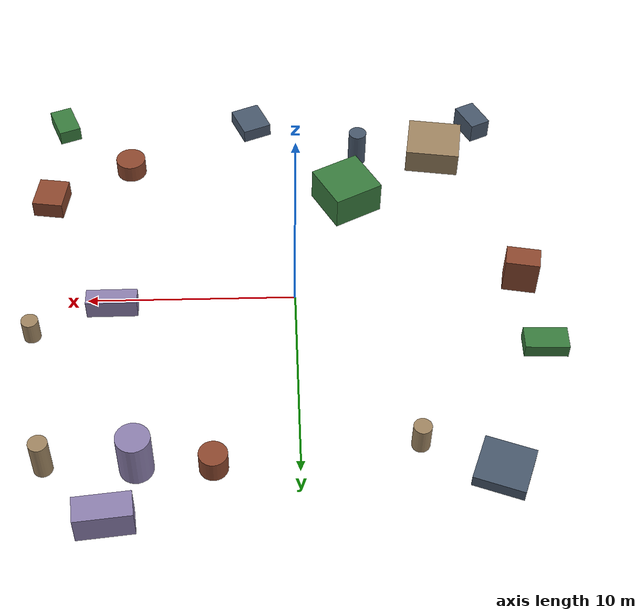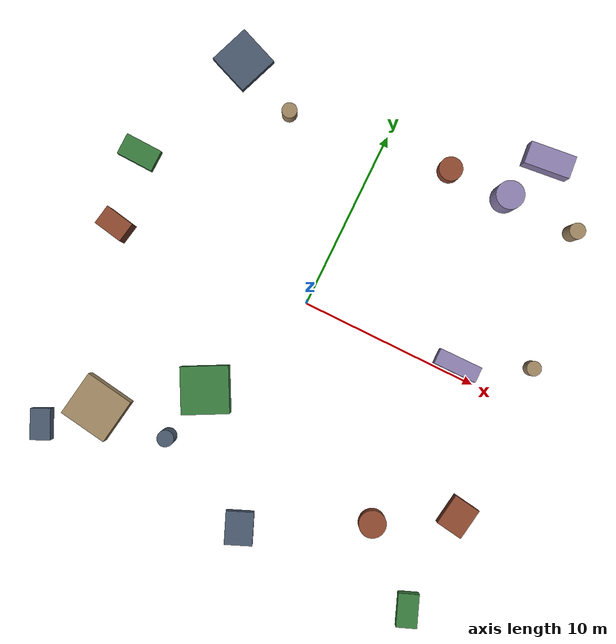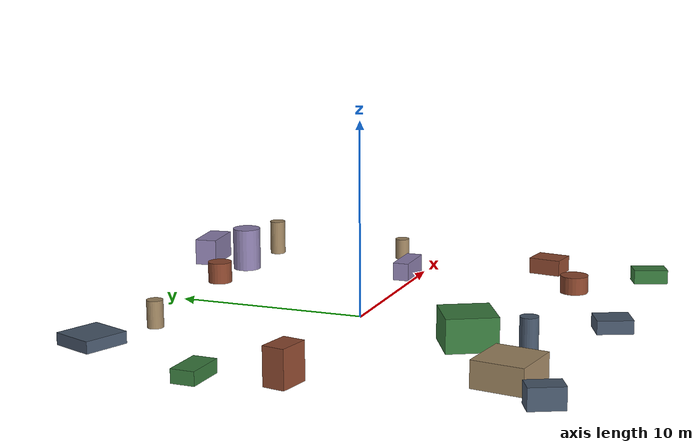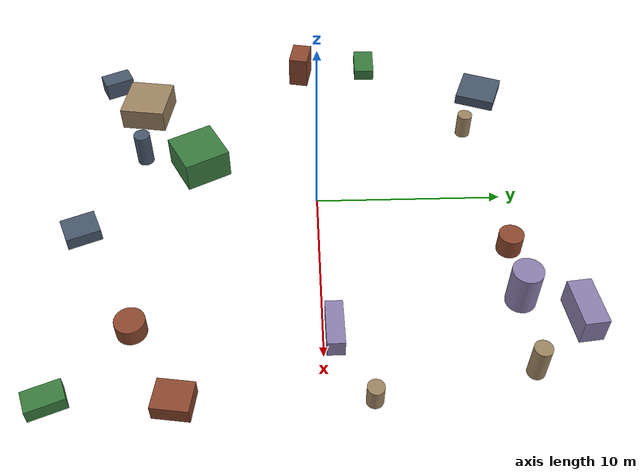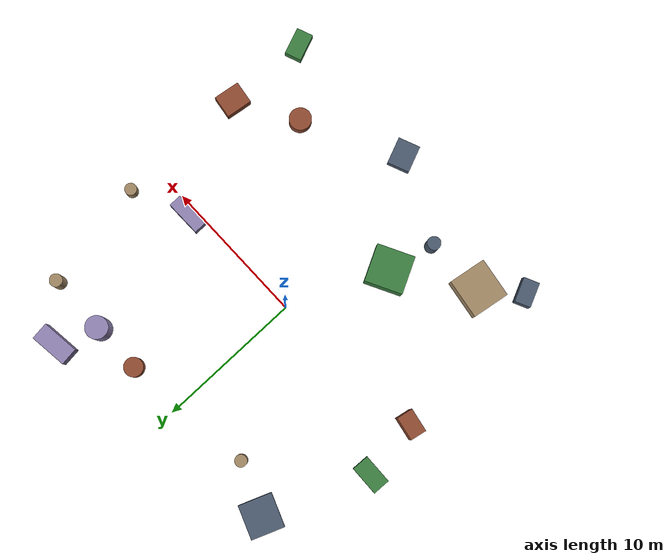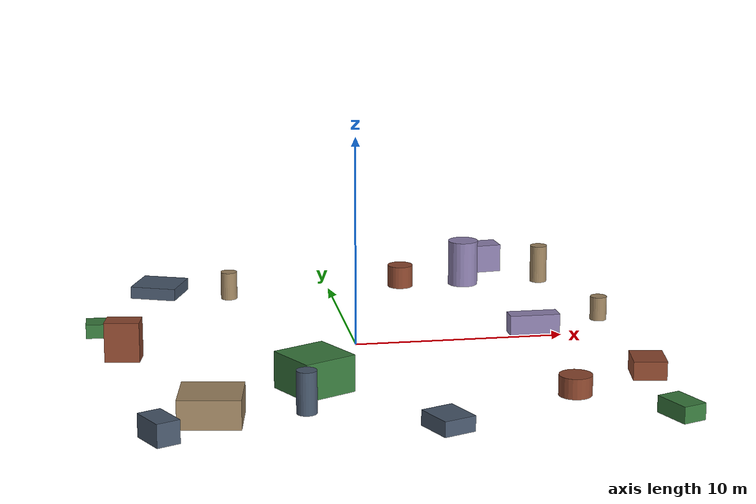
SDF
<sdf version="1.10">
 <world name="robotx_task1_uav_view">
  <gravity>0 0 -9.81</gravity>
  <physics name="physics" type="ode">
   <max_step_size>0.002</max_step_size>
   <real_time_factor>1.0</real_time_factor>
  </physics>
  <scene>
   <ambient>0.27 0.27 0.27 1.0</ambient>
   <background>0.62 0.75 0.92 1.0</background>
   <shadows>true</shadows>
   <grid>false</grid>
  </scene>
  <light name="sun" type="directional">
   <pose>0 0 300 0 0 0</pose>
   <diffuse>1.00 0.98 0.94 1.0</diffuse>
   <specular>1.00 1.00 1.00 1.0</specular>
   <direction>0.26 -0.12 -1.0</direction>
   <attenuation>
    <range>2500</range>
    <constant>0.85</constant>
    <linear>0.001</linear>
    <quadratic>0.00005</quadratic>
   </attenuation>
  </light>
  <plugin filename="gz-sim-physics-system" name="gz::sim::systems::Physics"/>
  <plugin filename="gz-sim-user-commands-system" name="gz::sim::systems::UserCommands"/>
  <plugin filename="gz-sim-scene-broadcaster-system" name="gz::sim::systems::SceneBroadcaster"/>
  <plugin filename="gz-sim-sensors-system" name="gz::sim::systems::Sensors">
   <render_engine>ogre2</render_engine>
  </plugin>
  <model name="scene_clutter_box_000">
   <static>true</static>
   <pose>-7.611 -9.910 0.671 0 0 2.988200</pose>
   <link name="link">
    <visual name="v">
     <geometry><box><size>2.726 2.551 1.303</size></box></geometry>
     <material><ambient>0.45 0.38 0.32 1.0</ambient><diffuse>0.62 0.52 0.38 1.0</diffuse></material>
    </visual>
   </link>
  </model>
  <model name="scene_clutter_box_001">
   <static>true</static>
   <pose>-8.780 10.248 0.324 0 0 2.772616</pose>
   <link name="link">
    <visual name="v">
     <geometry><box><size>2.343 2.295 0.608</size></box></geometry>
     <material><ambient>0.18 0.22 0.28 1.0</ambient><diffuse>0.28 0.34 0.42 1.0</diffuse></material>
    </visual>
   </link>
  </model>
  <model name="scene_clutter_cyl_002">
   <static>true</static>
   <pose>8.369 -9.059 0.517 0 0 2.999921</pose>
   <link name="link">
    <visual name="v">
     <geometry><cylinder><radius>0.751</radius><length>0.934</length></cylinder></geometry>
     <material><ambient>0.35 0.16 0.12 1.0</ambient><diffuse>0.55 0.28 0.18 1.0</diffuse></material>
    </visual>
   </link>
  </model>
  <model name="scene_clutter_box_003">
   <static>true</static>
   <pose>-11.616 3.330 0.360 0 0 -0.031598</pose>
   <link name="link">
    <visual name="v">
     <geometry><box><size>2.064 1.189 0.679</size></box></geometry>
     <material><ambient>0.12 0.30 0.14 1.0</ambient><diffuse>0.22 0.48 0.24 1.0</diffuse></material>
    </visual>
   </link>
  </model>
  <model name="scene_clutter_box_004">
   <static>true</static>
   <pose>8.745 0.567 0.505 0 0 1.579413</pose>
   <link name="link">
    <visual name="v">
     <geometry><box><size>0.871 2.436 0.970</size></box></geometry>
     <material><ambient>0.40 0.35 0.50 1.0</ambient><diffuse>0.55 0.50 0.68 1.0</diffuse></material>
    </visual>
   </link>
  </model>
  <model name="scene_clutter_cyl_005">
   <static>true</static>
   <pose>-5.300 8.778 0.750 0 0 -0.754507</pose>
   <link name="link">
    <visual name="v">
     <geometry><cylinder><radius>0.415</radius><length>1.400</length></cylinder></geometry>
     <material><ambient>0.45 0.38 0.32 1.0</ambient><diffuse>0.62 0.52 0.38 1.0</diffuse></material>
    </visual>
   </link>
  </model>
  <model name="scene_clutter_cyl_006">
   <static>true</static>
   <pose>-3.535 -9.691 1.011 0 0 1.131285</pose>
   <link name="link">
    <visual name="v">
     <geometry><cylinder><radius>0.452</radius><length>1.921</length></cylinder></geometry>
     <material><ambient>0.18 0.22 0.28 1.0</ambient><diffuse>0.28 0.34 0.42 1.0</diffuse></material>
    </visual>
   </link>
  </model>
  <model name="scene_clutter_box_007">
   <static>true</static>
   <pose>12.327 -6.705 0.458 0 0 -1.715385</pose>
   <link name="link">
    <visual name="v">
     <geometry><box><size>1.773 1.521 0.876</size></box></geometry>
     <material><ambient>0.35 0.16 0.12 1.0</ambient><diffuse>0.55 0.28 0.18 1.0</diffuse></material>
    </visual>
   </link>
  </model>
  <model name="scene_clutter_box_008">
   <static>true</static>
   <pose>-2.806 -6.520 0.866 0 0 -2.659452</pose>
   <link name="link">
    <visual name="v">
     <geometry><box><size>2.578 2.560 1.691</size></box></geometry>
     <material><ambient>0.12 0.30 0.14 1.0</ambient><diffuse>0.22 0.48 0.24 1.0</diffuse></material>
    </visual>
   </link>
  </model>
  <model name="scene_clutter_cyl_009">
   <static>true</static>
   <pose>7.109 9.758 1.215 0 0 0.705009</pose>
   <link name="link">
    <visual name="v">
     <geometry><cylinder><radius>0.767</radius><length>2.330</length></cylinder></geometry>
     <material><ambient>0.40 0.35 0.50 1.0</ambient><diffuse>0.55 0.50 0.68 1.0</diffuse></material>
    </visual>
   </link>
  </model>
  <model name="scene_clutter_cyl_010">
   <static>true</static>
   <pose>11.160 9.665 1.014 0 0 2.812409</pose>
   <link name="link">
    <visual name="v">
     <geometry><cylinder><radius>0.435</radius><length>1.929</length></cylinder></geometry>
     <material><ambient>0.45 0.38 0.32 1.0</ambient><diffuse>0.62 0.52 0.38 1.0</diffuse></material>
    </visual>
   </link>
  </model>
  <model name="scene_clutter_box_011">
   <static>true</static>
   <pose>2.061 -12.438 0.367 0 0 -2.746037</pose>
   <link name="link">
    <visual name="v">
     <geometry><box><size>1.517 1.816 0.694</size></box></geometry>
     <material><ambient>0.18 0.22 0.28 1.0</ambient><diffuse>0.28 0.34 0.42 1.0</diffuse></material>
    </visual>
   </link>
  </model>
  <model name="scene_clutter_box_012">
   <static>true</static>
   <pose>-10.972 -0.714 0.958 0 0 1.383851</pose>
   <link name="link">
    <visual name="v">
     <geometry><box><size>1.112 1.630 1.875</size></box></geometry>
     <material><ambient>0.35 0.16 0.12 1.0</ambient><diffuse>0.55 0.28 0.18 1.0</diffuse></material>
    </visual>
   </link>
  </model>
  <model name="scene_clutter_box_013">
   <static>true</static>
   <pose>12.121 -12.419 0.399 0 0 -2.767403</pose>
   <link name="link">
    <visual name="v">
     <geometry><box><size>1.134 1.834 0.758</size></box></geometry>
     <material><ambient>0.12 0.30 0.14 1.0</ambient><diffuse>0.22 0.48 0.24 1.0</diffuse></material>
    </visual>
   </link>
  </model>
  <model name="scene_clutter_box_014">
   <static>true</static>
   <pose>8.293 12.512 0.745 0 0 -3.030440</pose>
   <link name="link">
    <visual name="v">
     <geometry><box><size>2.539 1.222 1.451</size></box></geometry>
     <material><ambient>0.40 0.35 0.50 1.0</ambient><diffuse>0.55 0.50 0.68 1.0</diffuse></material>
    </visual>
   </link>
  </model>
  <model name="scene_clutter_cyl_015">
   <static>true</static>
   <pose>12.418 2.189 0.638 0 0 0.242495</pose>
   <link name="link">
    <visual name="v">
     <geometry><cylinder><radius>0.405</radius><length>1.175</length></cylinder></geometry>
     <material><ambient>0.45 0.38 0.32 1.0</ambient><diffuse>0.62 0.52 0.38 1.0</diffuse></material>
    </visual>
   </link>
  </model>
  <model name="scene_clutter_box_016">
   <static>true</static>
   <pose>-9.922 -12.051 0.541 0 0 0.443358</pose>
   <link name="link">
    <visual name="v">
     <geometry><box><size>1.084 1.688 1.043</size></box></geometry>
     <material><ambient>0.18 0.22 0.28 1.0</ambient><diffuse>0.28 0.34 0.42 1.0</diffuse></material>
    </visual>
   </link>
  </model>
  <model name="scene_clutter_cyl_017">
   <static>true</static>
   <pose>3.772 9.802 0.617 0 0 -0.760706</pose>
   <link name="link">
    <visual name="v">
     <geometry><cylinder><radius>0.648</radius><length>1.134</length></cylinder></geometry>
     <material><ambient>0.35 0.16 0.12 1.0</ambient><diffuse>0.55 0.28 0.18 1.0</diffuse></material>
    </visual>
   </link>
  </model>
  <model name="uav_dataset_camera">
   <static>false</static>
   <pose>0 0 26 0 0 0</pose>
   <plugin filename="librobotx_overhead_motion_plugin.dylib" name="robotx::OverheadMotionPlugin">
    <radius_x_m>11.80571</radius_x_m>
    <radius_y_m>10.29671</radius_y_m>
    <angular_speed_rad_s>0.076948</angular_speed_rad_s>
    <phase_rad>3.217177</phase_rad>
    <z_wobble_m>0.11950</z_wobble_m>
    <z_wobble_hz>0.06908</z_wobble_hz>
    <z_wobble_phase_rad>0.360689</z_wobble_phase_rad>
   </plugin>
   <link name="camera_link">
    <gravity>false</gravity>
    <sensor name="top_down_rgb" type="camera">
     <always_on>true</always_on>
     <update_rate>20</update_rate>
     <pose>0 0 0 0 1.57079632679 0</pose>
     <camera>
      <horizontal_fov>1.05</horizontal_fov>
      <image><width>1920</width><height>1080</height><format>R8G8B8</format></image>
      <clip><near>0.2</near><far>600</far></clip>
     </camera>
     <topic>/robotx/uav/camera/image_raw</topic>
     <visualize>true</visualize>
    </sensor>
   </link>
  </model>
 </world>
</sdf>
